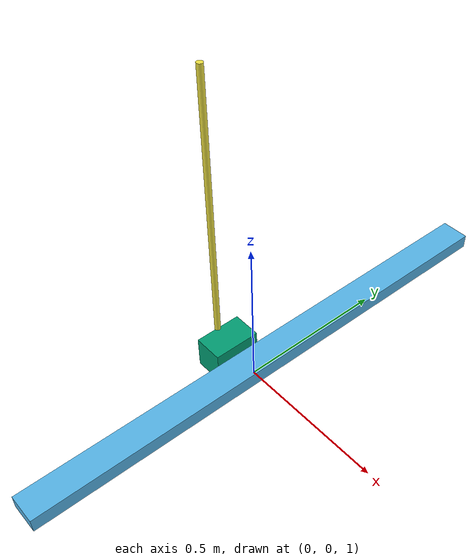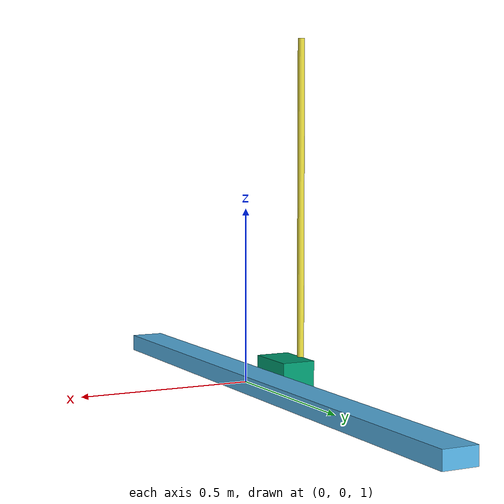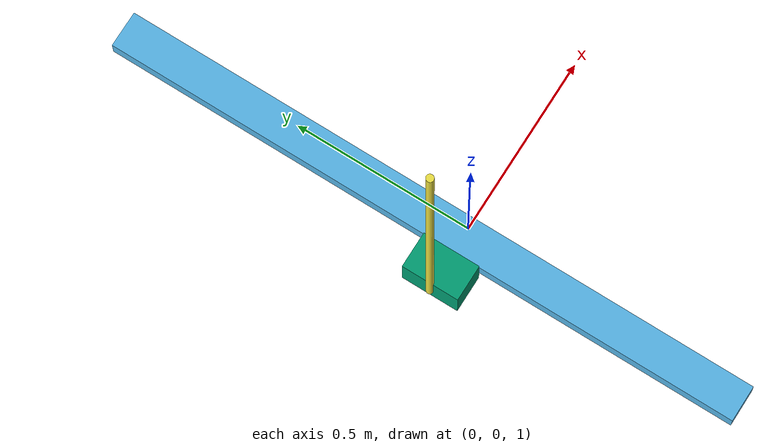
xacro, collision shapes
<?xml version="1.0" ?>
<robot name="cart_pole" xmlns:xacro="http://ros.org/wiki/xacro">
  <xacro:include filename="$(find cart_pole_bringup)/urdf/macros.urdf.xacro" />

  <link name="world" />
  <link name="slide_bar">
    <visual>
      <origin xyz="0 0 0" />
      <geometry>
        <mesh filename="package://cart_pole_bringup/meshes/slide_bar.dae"  />
      </geometry>
    </visual>
    <collision>
      <origin xyz="0.025 -0.1 0" rpy="0 0 ${pi/2.0}" />
      <geometry>
        <box size="1.8 0.1 0.05" />
      </geometry>
    </collision>
    <xacro:box_inertia m="10" w="1.8" h="0.1" d="0.05"  xyz="0.025 -0.1 0" rpy="0 0 ${pi/2.0}" />
  </link>

  <link name="cart">
    <visual>
      <origin xyz="0 0 0" />
      <geometry>
        <mesh filename="package://cart_pole_bringup/meshes/cart.dae" />
      </geometry>
    </visual>
    <collision>
      <origin xyz="0.04 0 0" />
      <geometry>
        <box size="0.1 0.16 0.11" />
      </geometry>
    </collision>

    <inertial>
      <mass value="1.006" />
      <inertia ixx="0.001999325" ixy="0.00000769" ixz="0.000002051"
                                 iyy="0.00218888" iyz="0.000001714"
                                                  izz="0.002943291" />
    </inertial>
  </link>

  <link name="pole_with_holder">
    <visual>
      <origin xyz="0 0 0" rpy="0 0 0" />
      <geometry>
        <mesh filename="package://cart_pole_bringup/meshes/pole_with_holder.dae"  />
      </geometry>
    </visual>
    <collision>
      <origin xyz="0.04 0.485 0" rpy="${pi/2.0} 0 0" />
      <geometry>
        <cylinder radius="0.01" length="1.0" />
      </geometry>
    </collision>
    <inertial>
      <origin xyz="0.039298 0.435057 0" rpy="0 0 0"/>
      <mass value="0.455"/>
      <inertia ixx="0.044100482" ixy="-0.000237859" ixz="-0.000004"
                                 iyy="0.000040196"  iyz="-0.000037"
                                                    izz="0.044096759" />

    </inertial>
  </link>

  <joint name="slider_to_pole_with_holder" type="revolute">
    <axis xyz="1 0 0" />
    <origin xyz="0.05 0 0" rpy="${pi/2} 0 0" />
    <parent link="cart" />
    <child link="pole_with_holder" />
    <limit effort="10000" lower="-1.4" upper="1.4" velocity="1000" />
  </joint>

  <joint name="world_to_base" type="fixed">
    <origin rpy="0 0 ${pi}" xyz="0 0 1" />
    <parent link="world" />
    <child link="slide_bar" />
  </joint>

  <joint name="slider_to_cart" type="prismatic">
    <axis xyz="0 -1 0" />
    <origin xyz="0.09 ${0.435057 - 0.435057} 0.004" />
    <parent link="slide_bar" />
    <child link="cart" />
    <limit effort="10000" lower="${-0.133 - 0.435057}" upper="${1.21 - 0.435057}" velocity="1000" />
    <dynamics damping="0.05" />
  </joint>

  <gazebo reference="cart">
    <visual>
      <material>
        <ambient>0 0 0.8 1</ambient>
        <diffuse>0 0 0.8 1</diffuse>
        <specular>0 0 0.8 1</specular>
      </material>
    </visual>
  </gazebo>

  <gazebo reference="pole_with_holder">
    <visual>
      <material>
        <ambient>0.8 0 0 1</ambient>
        <diffuse>0.8 0 0 1</diffuse>
        <specular>0.8 0 0 1</specular>
      </material>
    </visual>
  </gazebo>

  <gazebo>
    <plugin filename="gz-sim-joint-controller-system" name="gz::sim::systems::JointController">
      <joint_name>slider_to_cart</joint_name>
      <use_force_commands>true</use_force_commands>
      <topic>effort_cmd</topic>
    </plugin>
    <plugin filename="gz-sim-joint-state-publisher-system" name="gz::sim::systems::JointStatePublisher">
      <topic>joint_states</topic>
      <joint_name>slider_to_cart</joint_name>
      <joint_name>slider_to_pole_with_holder</joint_name>
    </plugin>
  </gazebo>
</robot>

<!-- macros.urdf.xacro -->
<robot name="cart_pole" xmlns:xacro="http://ros.org/wiki/xacro">
  <xacro:macro name="box_inertia" params="m w h d xyz:='0.0 0.0 0.0' rpy:='0.0 0.0 0.0'">
    <inertial>
      <origin xyz="${xyz}" rpy="${rpy}"/>
      <mass value="${m}"/>
      <inertia ixx="${(m/12) * (h*h + d*d)}" ixy="0.0" ixz="0.0" iyy="${(m/12) * (w*w + d*d)}" iyz="0.0" izz="${(m/12) * (w*w + h*h)}"/>
    </inertial>
  </xacro:macro>
</robot>
